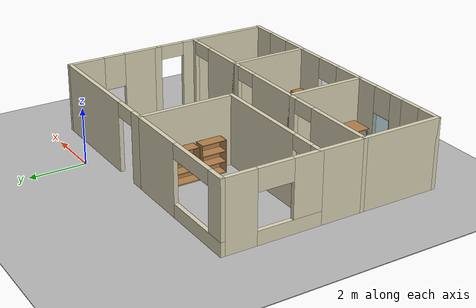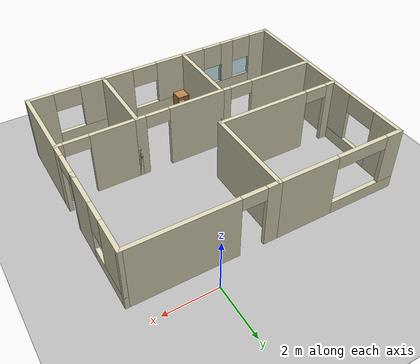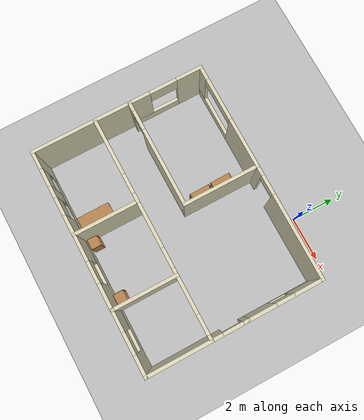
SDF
<sdf version="1.6">
 <world name="default">
  <light name="sun" type="directional">
   <pose>0 0 10 0 -0 0</pose>
   <diffuse>0.8 0.8 0.8 1</diffuse>
   <specular>0.2 0.2 0.2 1</specular>
   <attenuation>
    <range>1000</range>
    <constant>0.9</constant>
    <linear>0.01</linear>
    <quadratic>0.001</quadratic>
   </attenuation>
   <direction>0.5 0.1 -0.9</direction>
  </light>
  <scene><ambient>0.4 0.4 0.4 1</ambient><background>0.7 0.7 0.7 1</background><shadows>1</shadows></scene>
  <physics name="default_physics" default="0" type="ode">
   <max_step_size>0.01</max_step_size>
   <real_time_factor>1</real_time_factor>
   <real_time_update_rate>100</real_time_update_rate>
  </physics>
  <model name="ground_plane_0">
   <static>1</static>
   <link name="link">
    <collision name="collision">
     <geometry><plane><normal>0 0 1</normal><size>100 100</size></plane></geometry>
     <surface><friction><ode><mu>100</mu><mu2>50</mu2></ode></friction></surface>
    </collision>
    <visual name="visual">
     <cast_shadows>0</cast_shadows>
     <geometry><plane><normal>0 0 1</normal><size>100 100</size></plane></geometry>
     <material>
      <script><uri>file://media/materials/scripts/gazebo.material</uri><name>Gazebo/Grey</name></script>
     </material>
    </visual>
    <velocity_decay><linear>0</linear><angular>0</angular></velocity_decay>
   </link>
   <pose>0.497681 0 0 0 -0 0</pose>
  </model>
  <gravity>0 0 -9.8</gravity>
  <magnetic_field>6e-06 2.3e-05 -4.2e-05</magnetic_field>
  <atmosphere type="adiabatic"/>
  <spherical_coordinates>
   <surface_model>EARTH_WGS84</surface_model>
   <latitude_deg>0</latitude_deg>
   <longitude_deg>0</longitude_deg>
   <elevation>0</elevation>
   <heading_deg>0</heading_deg>
  </spherical_coordinates>
  <model name="simple_office1">
   <pose>-2.32762 -4.70819 0 0 -0 0</pose>
   <link name="Wall_69">
    <pose>-3.1 -3.9 0 0 -0 0</pose>
    <visual name="Wall_69_Visual_0">
     <pose>-1.5566 0 1.25 0 -0 0</pose>
     <geometry><box><size>0.886808 0.15 2.5</size></box></geometry>
     <material>
      <script><uri>file://media/materials/scripts/gazebo.material</uri><name>Gazebo/Grey</name></script>
      <ambient>0.847059 0.823529 0.705882 1</ambient>
     </material>
     <meta><layer>0</layer></meta>
    </visual>
    <collision name="Wall_69_Collision_0">
     <geometry><box><size>0.886808 0.15 2.5</size></box></geometry>
     <pose>-1.5566 0 1.25 0 -0 0</pose>
    </collision>
    <visual name="Wall_69_Visual_1">
     <pose>0.443404 0 0.375 0 -0 0</pose>
     <geometry><box><size>3.11319 0.15 0.75</size></box></geometry>
     <material>
      <script><uri>file://media/materials/scripts/gazebo.material</uri><name>Gazebo/Grey</name></script>
      <ambient>0.847059 0.823529 0.705882 1</ambient>
     </material>
     <meta><layer>0</layer></meta>
    </visual>
    <collision name="Wall_69_Collision_1">
     <geometry><box><size>3.11319 0.15 0.75</size></box></geometry>
     <pose>0.443404 0 0.375 0 -0 0</pose>
    </collision>
    <visual name="Wall_69_Visual_2">
     <pose>-0.036505 0 1.625 0 -0 0</pose>
     <geometry><box><size>0.553374 0.15 1.75</size></box></geometry>
     <material>
      <script><uri>file://media/materials/scripts/gazebo.material</uri><name>Gazebo/Grey</name></script>
      <ambient>0.847059 0.823529 0.705882 1</ambient>
     </material>
     <meta><layer>0</layer></meta>
    </visual>
    <collision name="Wall_69_Collision_2">
     <geometry><box><size>0.553374 0.15 1.75</size></box></geometry>
     <pose>-0.036505 0 1.625 0 -0 0</pose>
    </collision>
    <visual name="Wall_69_Visual_3">
     <pose>1.52009 0 1.625 0 -0 0</pose>
     <geometry><box><size>0.959818 0.15 1.75</size></box></geometry>
     <material>
      <script><uri>file://media/materials/scripts/gazebo.material</uri><name>Gazebo/Grey</name></script>
      <ambient>0.847059 0.823529 0.705882 1</ambient>
     </material>
     <meta><layer>0</layer></meta>
    </visual>
    <collision name="Wall_69_Collision_3">
     <geometry><box><size>0.959818 0.15 1.75</size></box></geometry>
     <pose>1.52009 0 1.625 0 -0 0</pose>
    </collision>
    <visual name="Wall_69_Visual_4">
     <pose>-0.713192 0 2.025 0 -0 0</pose>
     <geometry><box><size>0.8 0.15 0.95</size></box></geometry>
     <material>
      <script><uri>file://media/materials/scripts/gazebo.material</uri><name>Gazebo/Grey</name></script>
      <ambient>0.847059 0.823529 0.705882 1</ambient>
     </material>
     <meta><layer>0</layer></meta>
    </visual>
    <collision name="Wall_69_Collision_4">
     <geometry><box><size>0.8 0.15 0.95</size></box></geometry>
     <pose>-0.713192 0 2.025 0 -0 0</pose>
    </collision>
    <visual name="Wall_69_Visual_5">
     <pose>0.640182 0 2.025 0 -0 0</pose>
     <geometry><box><size>0.8 0.15 0.95</size></box></geometry>
     <material>
      <script><uri>file://media/materials/scripts/gazebo.material</uri><name>Gazebo/Grey</name></script>
      <ambient>0.847059 0.823529 0.705882 1</ambient>
     </material>
     <meta><layer>0</layer></meta>
    </visual>
    <collision name="Wall_69_Collision_5">
     <geometry><box><size>0.8 0.15 0.95</size></box></geometry>
     <pose>0.640182 0 2.025 0 -0 0</pose>
    </collision>
   </link>
   <link name="Wall_70">
    <collision name="Wall_70_Collision">
     <geometry><box><size>3 0.15 2.5</size></box></geometry>
     <pose>0 0 1.25 0 -0 0</pose>
    </collision>
    <visual name="Wall_70_Visual">
     <pose>0 0 1.25 0 -0 0</pose>
     <geometry><box><size>3 0.15 2.5</size></box></geometry>
     <material>
      <script><uri>file://media/materials/scripts/gazebo.material</uri><name>Gazebo/Grey</name></script>
      <ambient>0.847059 0.823529 0.705882 1</ambient>
     </material>
     <meta><layer>0</layer></meta>
    </visual>
    <pose>-1.175 -2.475 0 0 -0 1.5708</pose>
   </link>
   <link name="Wall_71">
    <pose>-3.1 -1.05 0 0 -0 3.14159</pose>
    <visual name="Wall_71_Visual_0">
     <pose>-1.77527 0 1.25 0 -0 0</pose>
     <geometry><box><size>0.449459 0.15 2.5</size></box></geometry>
     <material>
      <script><uri>file://media/materials/scripts/gazebo.material</uri><name>Gazebo/Grey</name></script>
      <ambient>0.847059 0.823529 0.705882 1</ambient>
     </material>
     <meta><layer>0</layer></meta>
    </visual>
    <collision name="Wall_71_Collision_0">
     <geometry><box><size>0.449459 0.15 2.5</size></box></geometry>
     <pose>-1.77527 0 1.25 0 -0 0</pose>
    </collision>
    <visual name="Wall_71_Visual_1">
     <pose>0.67473 0 1.25 0 -0 0</pose>
     <geometry><box><size>2.65054 0.15 2.5</size></box></geometry>
     <material>
      <script><uri>file://media/materials/scripts/gazebo.material</uri><name>Gazebo/Grey</name></script>
      <ambient>0.847059 0.823529 0.705882 1</ambient>
     </material>
     <meta><layer>0</layer></meta>
    </visual>
    <collision name="Wall_71_Collision_1">
     <geometry><box><size>2.65054 0.15 2.5</size></box></geometry>
     <pose>0.67473 0 1.25 0 -0 0</pose>
    </collision>
    <visual name="Wall_71_Visual_2">
     <pose>-1.10054 0 2.25 0 -0 0</pose>
     <geometry><box><size>0.9 0.15 0.5</size></box></geometry>
     <material>
      <script><uri>file://media/materials/scripts/gazebo.material</uri><name>Gazebo/Grey</name></script>
      <ambient>0.847059 0.823529 0.705882 1</ambient>
     </material>
     <meta><layer>0</layer></meta>
    </visual>
    <collision name="Wall_71_Collision_2">
     <geometry><box><size>0.9 0.15 0.5</size></box></geometry>
     <pose>-1.10054 0 2.25 0 -0 0</pose>
    </collision>
   </link>
   <link name="Wall_72">
    <collision name="Wall_72_Collision">
     <geometry><box><size>3 0.15 2.5</size></box></geometry>
     <pose>0 0 1.25 0 -0 0</pose>
    </collision>
    <visual name="Wall_72_Visual">
     <pose>0 0 1.25 0 -0 0</pose>
     <geometry><box><size>3 0.15 2.5</size></box></geometry>
     <material>
      <script><uri>file://media/materials/scripts/gazebo.material</uri><name>Gazebo/Grey</name></script>
      <ambient>0.847059 0.823529 0.705882 1</ambient>
     </material>
     <meta><layer>0</layer></meta>
    </visual>
    <pose>-5.025 -2.475 0 0 0 -1.5708</pose>
   </link>
   <link name="Wall_74">
    <pose>0.5 -1.05 0 0 -0 0</pose>
    <visual name="Wall_74_Visual_0">
     <pose>-0.651571 0 1.25 0 -0 0</pose>
     <geometry><box><size>2.19686 0.15 2.5</size></box></geometry>
     <material>
      <script><uri>file://media/materials/scripts/gazebo.material</uri><name>Gazebo/Grey</name></script>
      <ambient>0.847059 0.823529 0.705882 1</ambient>
     </material>
     <meta><layer>0</layer></meta>
    </visual>
    <collision name="Wall_74_Collision_0">
     <geometry><box><size>2.19686 0.15 2.5</size></box></geometry>
     <pose>-0.651571 0 1.25 0 -0 0</pose>
    </collision>
    <visual name="Wall_74_Visual_1">
     <pose>1.54843 0 1.25 0 -0 0</pose>
     <geometry><box><size>0.403141 0.15 2.5</size></box></geometry>
     <material>
      <script><uri>file://media/materials/scripts/gazebo.material</uri><name>Gazebo/Grey</name></script>
      <ambient>0.847059 0.823529 0.705882 1</ambient>
     </material>
     <meta><layer>0</layer></meta>
    </visual>
    <collision name="Wall_74_Collision_1">
     <geometry><box><size>0.403141 0.15 2.5</size></box></geometry>
     <pose>1.54843 0 1.25 0 -0 0</pose>
    </collision>
    <visual name="Wall_74_Visual_2">
     <pose>0.896859 0 2.25 0 -0 0</pose>
     <geometry><box><size>0.9 0.15 0.5</size></box></geometry>
     <material>
      <script><uri>file://media/materials/scripts/gazebo.material</uri><name>Gazebo/Grey</name></script>
      <ambient>0.847059 0.823529 0.705882 1</ambient>
     </material>
     <meta><layer>0</layer></meta>
    </visual>
    <collision name="Wall_74_Collision_2">
     <geometry><box><size>0.9 0.15 0.5</size></box></geometry>
     <pose>0.896859 0 2.25 0 -0 0</pose>
    </collision>
   </link>
   <link name="Wall_75">
    <collision name="Wall_75_Collision">
     <geometry><box><size>3 0.15 2.5</size></box></geometry>
     <pose>0 0 1.25 0 -0 0</pose>
    </collision>
    <visual name="Wall_75_Visual">
     <pose>0 0 1.25 0 -0 0</pose>
     <geometry><box><size>3 0.15 2.5</size></box></geometry>
     <material>
      <script><uri>file://media/materials/scripts/gazebo.material</uri><name>Gazebo/Grey</name></script>
      <ambient>0.847059 0.823529 0.705882 1</ambient>
     </material>
     <meta><layer>0</layer></meta>
    </visual>
    <pose>2.175 -2.475 0 0 0 -1.5708</pose>
   </link>
   <link name="Wall_76">
    <pose>0.5 -3.9 0 0 -0 3.14159</pose>
    <visual name="Wall_76_Visual_0">
     <pose>-1.1338 0 1.25 0 -0 0</pose>
     <geometry><box><size>1.2324 0.15 2.5</size></box></geometry>
     <material>
      <script><uri>file://media/materials/scripts/gazebo.material</uri><name>Gazebo/Grey</name></script>
      <ambient>0.847059 0.823529 0.705882 1</ambient>
     </material>
     <meta><layer>0</layer></meta>
    </visual>
    <collision name="Wall_76_Collision_0">
     <geometry><box><size>1.2324 0.15 2.5</size></box></geometry>
     <pose>-1.1338 0 1.25 0 -0 0</pose>
    </collision>
    <visual name="Wall_76_Visual_1">
     <pose>0.616199 0 0.375 0 -0 0</pose>
     <geometry><box><size>2.2676 0.15 0.75</size></box></geometry>
     <material>
      <script><uri>file://media/materials/scripts/gazebo.material</uri><name>Gazebo/Grey</name></script>
      <ambient>0.847059 0.823529 0.705882 1</ambient>
     </material>
     <meta><layer>0</layer></meta>
    </visual>
    <collision name="Wall_76_Collision_1">
     <geometry><box><size>2.2676 0.15 0.75</size></box></geometry>
     <pose>0.616199 0 0.375 0 -0 0</pose>
    </collision>
    <visual name="Wall_76_Visual_2">
     <pose>1.1162 0 1.625 0 -0 0</pose>
     <geometry><box><size>1.2676 0.15 1.75</size></box></geometry>
     <material>
      <script><uri>file://media/materials/scripts/gazebo.material</uri><name>Gazebo/Grey</name></script>
      <ambient>0.847059 0.823529 0.705882 1</ambient>
     </material>
     <meta><layer>0</layer></meta>
    </visual>
    <collision name="Wall_76_Collision_2">
     <geometry><box><size>1.2676 0.15 1.75</size></box></geometry>
     <pose>1.1162 0 1.625 0 -0 0</pose>
    </collision>
    <visual name="Wall_76_Visual_3">
     <pose>-0.017603 0 2.125 0 -0 0</pose>
     <geometry><box><size>1 0.15 0.75</size></box></geometry>
     <material>
      <script><uri>file://media/materials/scripts/gazebo.material</uri><name>Gazebo/Grey</name></script>
      <ambient>0.847059 0.823529 0.705882 1</ambient>
     </material>
     <meta><layer>0</layer></meta>
    </visual>
    <collision name="Wall_76_Collision_3">
     <geometry><box><size>1 0.15 0.75</size></box></geometry>
     <pose>-0.017603 0 2.125 0 -0 0</pose>
    </collision>
   </link>
   <link name="Wall_78">
    <pose>3.6 -1.05 0 0 -0 0</pose>
    <visual name="Wall_78_Visual_0">
     <pose>-0.608294 0 1.25 0 -0 0</pose>
     <geometry><box><size>1.78341 0.15 2.5</size></box></geometry>
     <material>
      <script><uri>file://media/materials/scripts/gazebo.material</uri><name>Gazebo/Grey</name></script>
      <ambient>0.847059 0.823529 0.705882 1</ambient>
     </material>
     <meta><layer>0</layer></meta>
    </visual>
    <collision name="Wall_78_Collision_0">
     <geometry><box><size>1.78341 0.15 2.5</size></box></geometry>
     <pose>-0.608294 0 1.25 0 -0 0</pose>
    </collision>
    <visual name="Wall_78_Visual_1">
     <pose>1.34171 0 1.25 0 -0 0</pose>
     <geometry><box><size>0.316587 0.15 2.5</size></box></geometry>
     <material>
      <script><uri>file://media/materials/scripts/gazebo.material</uri><name>Gazebo/Grey</name></script>
      <ambient>0.847059 0.823529 0.705882 1</ambient>
     </material>
     <meta><layer>0</layer></meta>
    </visual>
    <collision name="Wall_78_Collision_1">
     <geometry><box><size>0.316587 0.15 2.5</size></box></geometry>
     <pose>1.34171 0 1.25 0 -0 0</pose>
    </collision>
    <visual name="Wall_78_Visual_2">
     <pose>0.733413 0 2.25 0 -0 0</pose>
     <geometry><box><size>0.9 0.15 0.5</size></box></geometry>
     <material>
      <script><uri>file://media/materials/scripts/gazebo.material</uri><name>Gazebo/Grey</name></script>
      <ambient>0.847059 0.823529 0.705882 1</ambient>
     </material>
     <meta><layer>0</layer></meta>
    </visual>
    <collision name="Wall_78_Collision_2">
     <geometry><box><size>0.9 0.15 0.5</size></box></geometry>
     <pose>0.733413 0 2.25 0 -0 0</pose>
    </collision>
   </link>
   <link name="Wall_79">
    <collision name="Wall_79_Collision">
     <geometry><box><size>3 0.15 2.5</size></box></geometry>
     <pose>0 0 1.25 0 -0 0</pose>
    </collision>
    <visual name="Wall_79_Visual">
     <pose>0 0 1.25 0 -0 0</pose>
     <geometry><box><size>3 0.15 2.5</size></box></geometry>
     <material>
      <script><uri>file://media/materials/scripts/gazebo.material</uri><name>Gazebo/Grey</name></script>
      <ambient>0.847059 0.823529 0.705882 1</ambient>
     </material>
     <meta><layer>0</layer></meta>
    </visual>
    <pose>5.025 -2.475 0 0 0 -1.5708</pose>
   </link>
   <link name="Wall_80">
    <pose>3.6 -3.9 0 0 -0 3.14159</pose>
    <visual name="Wall_80_Visual_0">
     <pose>-1.0039 0 1.25 0 -0 0</pose>
     <geometry><box><size>0.992195 0.15 2.5</size></box></geometry>
     <material>
      <script><uri>file://media/materials/scripts/gazebo.material</uri><name>Gazebo/Grey</name></script>
      <ambient>0.847059 0.823529 0.705882 1</ambient>
     </material>
     <meta><layer>0</layer></meta>
    </visual>
    <collision name="Wall_80_Collision_0">
     <geometry><box><size>0.992195 0.15 2.5</size></box></geometry>
     <pose>-1.0039 0 1.25 0 -0 0</pose>
    </collision>
    <visual name="Wall_80_Visual_1">
     <pose>0.496097 0 0.375 0 -0 0</pose>
     <geometry><box><size>2.0078 0.15 0.75</size></box></geometry>
     <material>
      <script><uri>file://media/materials/scripts/gazebo.material</uri><name>Gazebo/Grey</name></script>
      <ambient>0.847059 0.823529 0.705882 1</ambient>
     </material>
     <meta><layer>0</layer></meta>
    </visual>
    <collision name="Wall_80_Collision_1">
     <geometry><box><size>2.0078 0.15 0.75</size></box></geometry>
     <pose>0.496097 0 0.375 0 -0 0</pose>
    </collision>
    <visual name="Wall_80_Visual_2">
     <pose>0.996097 0 1.625 0 -0 0</pose>
     <geometry><box><size>1.00781 0.15 1.75</size></box></geometry>
     <material>
      <script><uri>file://media/materials/scripts/gazebo.material</uri><name>Gazebo/Grey</name></script>
      <ambient>0.847059 0.823529 0.705882 1</ambient>
     </material>
     <meta><layer>0</layer></meta>
    </visual>
    <collision name="Wall_80_Collision_2">
     <geometry><box><size>1.00781 0.15 1.75</size></box></geometry>
     <pose>0.996097 0 1.625 0 -0 0</pose>
    </collision>
    <visual name="Wall_80_Visual_3">
     <pose>-0.007805 0 2.125 0 -0 0</pose>
     <geometry><box><size>1 0.15 0.75</size></box></geometry>
     <material>
      <script><uri>file://media/materials/scripts/gazebo.material</uri><name>Gazebo/Grey</name></script>
      <ambient>0.847059 0.823529 0.705882 1</ambient>
     </material>
     <meta><layer>0</layer></meta>
    </visual>
    <collision name="Wall_80_Collision_3">
     <geometry><box><size>1 0.15 0.75</size></box></geometry>
     <pose>-0.007805 0 2.125 0 -0 0</pose>
    </collision>
   </link>
   <link name="Wall_82">
    <collision name="Wall_82_Collision">
     <geometry><box><size>1.75 0.15 2.5</size></box></geometry>
     <pose>0 0 1.25 0 -0 0</pose>
    </collision>
    <visual name="Wall_82_Visual">
     <pose>0 0 1.25 0 -0 0</pose>
     <geometry><box><size>1.75 0.15 2.5</size></box></geometry>
     <material>
      <script><uri>file://media/materials/scripts/gazebo.material</uri><name>Gazebo/Grey</name></script>
      <ambient>0.847059 0.823529 0.705882 1</ambient>
     </material>
     <meta><layer>0</layer></meta>
    </visual>
    <pose>-5.025 -0.25 0 0 -0 1.5708</pose>
   </link>
   <link name="Wall_84">
    <pose>5.025 -0.25 0 0 -0 1.5708</pose>
    <visual name="Wall_84_Visual_0">
     <pose>-0.585295 0 1.25 0 -0 0</pose>
     <geometry><box><size>0.57941 0.15 2.5</size></box></geometry>
     <material>
      <script><uri>file://media/materials/scripts/gazebo.material</uri><name>Gazebo/Grey</name></script>
      <ambient>0.847059 0.823529 0.705882 1</ambient>
     </material>
     <meta><layer>0</layer></meta>
    </visual>
    <collision name="Wall_84_Collision_0">
     <geometry><box><size>0.57941 0.15 2.5</size></box></geometry>
     <pose>-0.585295 0 1.25 0 -0 0</pose>
    </collision>
    <visual name="Wall_84_Visual_1">
     <pose>0.739705 0 1.25 0 -0 0</pose>
     <geometry><box><size>0.27059 0.15 2.5</size></box></geometry>
     <material>
      <script><uri>file://media/materials/scripts/gazebo.material</uri><name>Gazebo/Grey</name></script>
      <ambient>0.847059 0.823529 0.705882 1</ambient>
     </material>
     <meta><layer>0</layer></meta>
    </visual>
    <collision name="Wall_84_Collision_1">
     <geometry><box><size>0.27059 0.15 2.5</size></box></geometry>
     <pose>0.739705 0 1.25 0 -0 0</pose>
    </collision>
    <visual name="Wall_84_Visual_2">
     <pose>0.15441 0 2.25 0 -0 0</pose>
     <geometry><box><size>0.9 0.15 0.5</size></box></geometry>
     <material>
      <script><uri>file://media/materials/scripts/gazebo.material</uri><name>Gazebo/Grey</name></script>
      <ambient>0.847059 0.823529 0.705882 1</ambient>
     </material>
     <meta><layer>0</layer></meta>
    </visual>
    <collision name="Wall_84_Collision_2">
     <geometry><box><size>0.9 0.15 0.5</size></box></geometry>
     <pose>0.15441 0 2.25 0 -0 0</pose>
    </collision>
   </link>
   <link name="Wall_86">
    <pose>-2.6 0.55 0 0 -0 0</pose>
    <visual name="Wall_86_Visual_0">
     <pose>-2.26733 0 1.25 0 -0 0</pose>
     <geometry><box><size>0.465335 0.15 2.5</size></box></geometry>
     <material>
      <script><uri>file://media/materials/scripts/gazebo.material</uri><name>Gazebo/Grey</name></script>
      <ambient>0.847059 0.823529 0.705882 1</ambient>
     </material>
     <meta><layer>0</layer></meta>
    </visual>
    <collision name="Wall_86_Collision_0">
     <geometry><box><size>0.465335 0.15 2.5</size></box></geometry>
     <pose>-2.26733 0 1.25 0 -0 0</pose>
    </collision>
    <visual name="Wall_86_Visual_1">
     <pose>0.682668 0 1.25 0 -0 0</pose>
     <geometry><box><size>3.63467 0.15 2.5</size></box></geometry>
     <material>
      <script><uri>file://media/materials/scripts/gazebo.material</uri><name>Gazebo/Grey</name></script>
      <ambient>0.847059 0.823529 0.705882 1</ambient>
     </material>
     <meta><layer>0</layer></meta>
    </visual>
    <collision name="Wall_86_Collision_1">
     <geometry><box><size>3.63467 0.15 2.5</size></box></geometry>
     <pose>0.682668 0 1.25 0 -0 0</pose>
    </collision>
    <visual name="Wall_86_Visual_2">
     <pose>-1.58466 0 2.25 0 -0 0</pose>
     <geometry><box><size>0.9 0.15 0.5</size></box></geometry>
     <material>
      <script><uri>file://media/materials/scripts/gazebo.material</uri><name>Gazebo/Grey</name></script>
      <ambient>0.847059 0.823529 0.705882 1</ambient>
     </material>
     <meta><layer>0</layer></meta>
    </visual>
    <collision name="Wall_86_Collision_2">
     <geometry><box><size>0.9 0.15 0.5</size></box></geometry>
     <pose>-1.58466 0 2.25 0 -0 0</pose>
    </collision>
   </link>
   <link name="Wall_87">
    <collision name="Wall_87_Collision">
     <geometry><box><size>3.5 0.15 2.5</size></box></geometry>
     <pose>0 0 1.25 0 -0 0</pose>
    </collision>
    <visual name="Wall_87_Visual">
     <pose>0 0 1.25 0 -0 0</pose>
     <geometry><box><size>3.5 0.15 2.5</size></box></geometry>
     <material>
      <script><uri>file://media/materials/scripts/gazebo.material</uri><name>Gazebo/Grey</name></script>
      <ambient>0.847059 0.823529 0.705882 1</ambient>
     </material>
     <meta><layer>0</layer></meta>
    </visual>
    <pose>-0.175 2.225 0 0 -0 1.5708</pose>
   </link>
   <link name="Wall_88">
    <pose>-2.6 3.9 0 0 -0 3.14159</pose>
    <visual name="Wall_88_Visual_0">
     <pose>-1.33513 0 1.25 0 -0 0</pose>
     <geometry><box><size>2.32974 0.15 2.5</size></box></geometry>
     <material>
      <script><uri>file://media/materials/scripts/gazebo.material</uri><name>Gazebo/Grey</name></script>
      <ambient>0.847059 0.823529 0.705882 1</ambient>
     </material>
     <meta><layer>0</layer></meta>
    </visual>
    <collision name="Wall_88_Collision_0">
     <geometry><box><size>2.32974 0.15 2.5</size></box></geometry>
     <pose>-1.33513 0 1.25 0 -0 0</pose>
    </collision>
    <visual name="Wall_88_Visual_1">
     <pose>1.16487 0 0.25 0 -0 0</pose>
     <geometry><box><size>2.67026 0.15 0.5</size></box></geometry>
     <material>
      <script><uri>file://media/materials/scripts/gazebo.material</uri><name>Gazebo/Grey</name></script>
      <ambient>0.847059 0.823529 0.705882 1</ambient>
     </material>
     <meta><layer>0</layer></meta>
    </visual>
    <collision name="Wall_88_Collision_1">
     <geometry><box><size>2.67026 0.15 0.5</size></box></geometry>
     <pose>1.16487 0 0.25 0 -0 0</pose>
    </collision>
    <visual name="Wall_88_Visual_2">
     <pose>2.16487 0 1.5 0 -0 0</pose>
     <geometry><box><size>0.670264 0.15 2</size></box></geometry>
     <material>
      <script><uri>file://media/materials/scripts/gazebo.material</uri><name>Gazebo/Grey</name></script>
      <ambient>0.847059 0.823529 0.705882 1</ambient>
     </material>
     <meta><layer>0</layer></meta>
    </visual>
    <collision name="Wall_88_Collision_2">
     <geometry><box><size>0.670264 0.15 2</size></box></geometry>
     <pose>2.16487 0 1.5 0 -0 0</pose>
    </collision>
    <visual name="Wall_88_Visual_3">
     <pose>0.829736 0 2.25 0 -0 0</pose>
     <geometry><box><size>2 0.15 0.5</size></box></geometry>
     <material>
      <script><uri>file://media/materials/scripts/gazebo.material</uri><name>Gazebo/Grey</name></script>
      <ambient>0.847059 0.823529 0.705882 1</ambient>
     </material>
     <meta><layer>0</layer></meta>
    </visual>
    <collision name="Wall_88_Collision_3">
     <geometry><box><size>2 0.15 0.5</size></box></geometry>
     <pose>0.829736 0 2.25 0 -0 0</pose>
    </collision>
   </link>
   <link name="Wall_89">
    <pose>-5.025 2.225 0 0 0 -1.5708</pose>
    <visual name="Wall_89_Visual_0">
     <pose>-1.13371 0 1.25 0 -0 0</pose>
     <geometry><box><size>1.23257 0.15 2.5</size></box></geometry>
     <material>
      <script><uri>file://media/materials/scripts/gazebo.material</uri><name>Gazebo/Grey</name></script>
      <ambient>0.847059 0.823529 0.705882 1</ambient>
     </material>
     <meta><layer>0</layer></meta>
    </visual>
    <collision name="Wall_89_Collision_0">
     <geometry><box><size>1.23257 0.15 2.5</size></box></geometry>
     <pose>-1.13371 0 1.25 0 -0 0</pose>
    </collision>
    <visual name="Wall_89_Visual_1">
     <pose>0.616286 0 0.25 0 -0 0</pose>
     <geometry><box><size>2.26743 0.15 0.5</size></box></geometry>
     <material>
      <script><uri>file://media/materials/scripts/gazebo.material</uri><name>Gazebo/Grey</name></script>
      <ambient>0.847059 0.823529 0.705882 1</ambient>
     </material>
     <meta><layer>0</layer></meta>
    </visual>
    <collision name="Wall_89_Collision_1">
     <geometry><box><size>2.26743 0.15 0.5</size></box></geometry>
     <pose>0.616286 0 0.25 0 -0 0</pose>
    </collision>
    <visual name="Wall_89_Visual_2">
     <pose>1.24129 0 1.5 0 -0 0</pose>
     <geometry><box><size>1.01743 0.15 2</size></box></geometry>
     <material>
      <script><uri>file://media/materials/scripts/gazebo.material</uri><name>Gazebo/Grey</name></script>
      <ambient>0.847059 0.823529 0.705882 1</ambient>
     </material>
     <meta><layer>0</layer></meta>
    </visual>
    <collision name="Wall_89_Collision_2">
     <geometry><box><size>1.01743 0.15 2</size></box></geometry>
     <pose>1.24129 0 1.5 0 -0 0</pose>
    </collision>
    <visual name="Wall_89_Visual_3">
     <pose>0.107572 0 2.125 0 -0 0</pose>
     <geometry><box><size>1.25 0.15 0.75</size></box></geometry>
     <material>
      <script><uri>file://media/materials/scripts/gazebo.material</uri><name>Gazebo/Grey</name></script>
      <ambient>0.847059 0.823529 0.705882 1</ambient>
     </material>
     <meta><layer>0</layer></meta>
    </visual>
    <collision name="Wall_89_Collision_3">
     <geometry><box><size>1.25 0.15 0.75</size></box></geometry>
     <pose>0.107572 0 2.125 0 -0 0</pose>
    </collision>
   </link>
   <link name="Wall_91">
    <pose>5.025 2.225 0 0 -0 1.5708</pose>
    <visual name="Wall_91_Visual_0">
     <pose>-1.0724 0 1.25 0 -0 0</pose>
     <geometry><box><size>1.35521 0.15 2.5</size></box></geometry>
     <material>
      <script><uri>file://media/materials/scripts/gazebo.material</uri><name>Gazebo/Grey</name></script>
      <ambient>0.847059 0.823529 0.705882 1</ambient>
     </material>
     <meta><layer>0</layer></meta>
    </visual>
    <collision name="Wall_91_Collision_0">
     <geometry><box><size>1.35521 0.15 2.5</size></box></geometry>
     <pose>-1.0724 0 1.25 0 -0 0</pose>
    </collision>
    <visual name="Wall_91_Visual_1">
     <pose>0.677604 0 0.25 0 -0 0</pose>
     <geometry><box><size>2.14479 0.15 0.5</size></box></geometry>
     <material>
      <script><uri>file://media/materials/scripts/gazebo.material</uri><name>Gazebo/Grey</name></script>
      <ambient>0.847059 0.823529 0.705882 1</ambient>
     </material>
     <meta><layer>0</layer></meta>
    </visual>
    <collision name="Wall_91_Collision_1">
     <geometry><box><size>2.14479 0.15 0.5</size></box></geometry>
     <pose>0.677604 0 0.25 0 -0 0</pose>
    </collision>
    <visual name="Wall_91_Visual_2">
     <pose>1.0776 0 1.5 0 -0 0</pose>
     <geometry><box><size>1.34479 0.15 2</size></box></geometry>
     <material>
      <script><uri>file://media/materials/scripts/gazebo.material</uri><name>Gazebo/Grey</name></script>
      <ambient>0.847059 0.823529 0.705882 1</ambient>
     </material>
     <meta><layer>0</layer></meta>
    </visual>
    <collision name="Wall_91_Collision_2">
     <geometry><box><size>1.34479 0.15 2</size></box></geometry>
     <pose>1.0776 0 1.5 0 -0 0</pose>
    </collision>
    <visual name="Wall_91_Visual_3">
     <pose>0.005209 0 1.9 0 -0 0</pose>
     <geometry><box><size>0.8 0.15 1.2</size></box></geometry>
     <material>
      <script><uri>file://media/materials/scripts/gazebo.material</uri><name>Gazebo/Grey</name></script>
      <ambient>0.847059 0.823529 0.705882 1</ambient>
     </material>
     <meta><layer>0</layer></meta>
    </visual>
    <collision name="Wall_91_Collision_3">
     <geometry><box><size>0.8 0.15 1.2</size></box></geometry>
     <pose>0.005209 0 1.9 0 -0 0</pose>
    </collision>
   </link>
   <link name="Wall_92">
    <pose>2.425 3.9 0 0 -0 3.14159</pose>
    <visual name="Wall_92_Visual_0">
     <pose>-0.710441 0 1.25 0 -0 0</pose>
     <geometry><box><size>3.92912 0.15 2.5</size></box></geometry>
     <material>
      <script><uri>file://media/materials/scripts/gazebo.material</uri><name>Gazebo/Grey</name></script>
      <ambient>0.847059 0.823529 0.705882 1</ambient>
     </material>
     <meta><layer>0</layer></meta>
    </visual>
    <collision name="Wall_92_Collision_0">
     <geometry><box><size>3.92912 0.15 2.5</size></box></geometry>
     <pose>-0.710441 0 1.25 0 -0 0</pose>
    </collision>
    <visual name="Wall_92_Visual_1">
     <pose>2.41456 0 1.25 0 -0 0</pose>
     <geometry><box><size>0.520883 0.15 2.5</size></box></geometry>
     <material>
      <script><uri>file://media/materials/scripts/gazebo.material</uri><name>Gazebo/Grey</name></script>
      <ambient>0.847059 0.823529 0.705882 1</ambient>
     </material>
     <meta><layer>0</layer></meta>
    </visual>
    <collision name="Wall_92_Collision_1">
     <geometry><box><size>0.520883 0.15 2.5</size></box></geometry>
     <pose>2.41456 0 1.25 0 -0 0</pose>
    </collision>
    <visual name="Wall_92_Visual_2">
     <pose>1.70412 0 2.25 0 -0 0</pose>
     <geometry><box><size>0.9 0.15 0.5</size></box></geometry>
     <material>
      <script><uri>file://media/materials/scripts/gazebo.material</uri><name>Gazebo/Grey</name></script>
      <ambient>0.847059 0.823529 0.705882 1</ambient>
     </material>
     <meta><layer>0</layer></meta>
    </visual>
    <collision name="Wall_92_Collision_2">
     <geometry><box><size>0.9 0.15 0.5</size></box></geometry>
     <pose>1.70412 0 2.25 0 -0 0</pose>
    </collision>
   </link>
   <static>1</static>
  </model>
  <model name="bookshelf">
   <static>1</static>
   <link name="link">
    <inertial><mass>1</mass></inertial>
    <collision name="back">
     <pose>0 0.005 0.6 0 -0 0</pose>
     <geometry><box><size>0.9 0.01 1.2</size></box></geometry>
    </collision>
    <visual name="visual1">
     <pose>0 0.005 0.6 0 -0 0</pose>
     <geometry><box><size>0.9 0.01 1.2</size></box></geometry>
     <material>
      <script><uri>file://media/materials/scripts/gazebo.material</uri><name>Gazebo/Wood</name></script>
     </material>
    </visual>
    <collision name="left_side">
     <pose>0.45 -0.195 0.6 0 -0 0</pose>
     <geometry><box><size>0.02 0.4 1.2</size></box></geometry>
    </collision>
    <visual name="visual2">
     <pose>0.45 -0.195 0.6 0 -0 0</pose>
     <geometry><box><size>0.02 0.4 1.2</size></box></geometry>
     <material>
      <script><uri>file://media/materials/scripts/gazebo.material</uri><name>Gazebo/Wood</name></script>
     </material>
    </visual>
    <collision name="right_side">
     <pose>-0.45 -0.195 0.6 0 -0 0</pose>
     <geometry><box><size>0.02 0.4 1.2</size></box></geometry>
    </collision>
    <visual name="visual3">
     <pose>-0.45 -0.195 0.6 0 -0 0</pose>
     <geometry><box><size>0.02 0.4 1.2</size></box></geometry>
     <material>
      <script><uri>file://media/materials/scripts/gazebo.material</uri><name>Gazebo/Wood</name></script>
     </material>
    </visual>
    <collision name="bottom">
     <pose>0 -0.195 0.03 0 -0 0</pose>
     <geometry><box><size>0.88 0.4 0.06</size></box></geometry>
    </collision>
    <visual name="visual4">
     <pose>0 -0.195 0.03 0 -0 0</pose>
     <geometry><box><size>0.88 0.4 0.06</size></box></geometry>
     <material>
      <script><uri>file://media/materials/scripts/gazebo.material</uri><name>Gazebo/Wood</name></script>
     </material>
    </visual>
    <collision name="top">
     <pose>0 -0.195 1.19 0 -0 0</pose>
     <geometry><box><size>0.88 0.4 0.02</size></box></geometry>
    </collision>
    <visual name="visual5">
     <pose>0 -0.195 1.19 0 -0 0</pose>
     <geometry><box><size>0.88 0.4 0.02</size></box></geometry>
     <material>
      <script><uri>file://media/materials/scripts/gazebo.material</uri><name>Gazebo/Wood</name></script>
     </material>
    </visual>
    <collision name="low_shelf">
     <pose>0 -0.195 0.43 0 -0 0</pose>
     <geometry><box><size>0.88 0.4 0.02</size></box></geometry>
    </collision>
    <visual name="visual6">
     <pose>0 -0.195 0.43 0 -0 0</pose>
     <geometry><box><size>0.88 0.4 0.02</size></box></geometry>
     <material>
      <script><uri>file://media/materials/scripts/gazebo.material</uri><name>Gazebo/Wood</name></script>
     </material>
    </visual>
    <collision name="high_shelf">
     <pose>0 -0.195 0.8 0 -0 0</pose>
     <geometry><box><size>0.88 0.4 0.02</size></box></geometry>
    </collision>
    <visual name="visual7">
     <pose>0 -0.195 0.8 0 -0 0</pose>
     <geometry><box><size>0.88 0.4 0.02</size></box></geometry>
     <material>
      <script><uri>file://media/materials/scripts/gazebo.material</uri><name>Gazebo/Wood</name></script>
     </material>
    </visual>
   </link>
   <pose>-2.64639 -2.1797 0 0 0 -1.5623</pose>
  </model>
  <model name="bookshelf_clone">
   <static>1</static>
   <link name="link">
    <inertial><mass>1</mass></inertial>
    <collision name="back">
     <pose>0 0.005 0.6 0 -0 0</pose>
     <geometry><box><size>0.9 0.01 1.2</size></box></geometry>
    </collision>
    <visual name="visual1">
     <pose>0 0.005 0.6 0 -0 0</pose>
     <geometry><box><size>0.9 0.01 1.2</size></box></geometry>
     <material>
      <script><uri>file://media/materials/scripts/gazebo.material</uri><name>Gazebo/Wood</name></script>
     </material>
    </visual>
    <collision name="left_side">
     <pose>0.45 -0.195 0.6 0 -0 0</pose>
     <geometry><box><size>0.02 0.4 1.2</size></box></geometry>
    </collision>
    <visual name="visual2">
     <pose>0.45 -0.195 0.6 0 -0 0</pose>
     <geometry><box><size>0.02 0.4 1.2</size></box></geometry>
     <material>
      <script><uri>file://media/materials/scripts/gazebo.material</uri><name>Gazebo/Wood</name></script>
     </material>
    </visual>
    <collision name="right_side">
     <pose>-0.45 -0.195 0.6 0 -0 0</pose>
     <geometry><box><size>0.02 0.4 1.2</size></box></geometry>
    </collision>
    <visual name="visual3">
     <pose>-0.45 -0.195 0.6 0 -0 0</pose>
     <geometry><box><size>0.02 0.4 1.2</size></box></geometry>
     <material>
      <script><uri>file://media/materials/scripts/gazebo.material</uri><name>Gazebo/Wood</name></script>
     </material>
    </visual>
    <collision name="bottom">
     <pose>0 -0.195 0.03 0 -0 0</pose>
     <geometry><box><size>0.88 0.4 0.06</size></box></geometry>
    </collision>
    <visual name="visual4">
     <pose>0 -0.195 0.03 0 -0 0</pose>
     <geometry><box><size>0.88 0.4 0.06</size></box></geometry>
     <material>
      <script><uri>file://media/materials/scripts/gazebo.material</uri><name>Gazebo/Wood</name></script>
     </material>
    </visual>
    <collision name="top">
     <pose>0 -0.195 1.19 0 -0 0</pose>
     <geometry><box><size>0.88 0.4 0.02</size></box></geometry>
    </collision>
    <visual name="visual5">
     <pose>0 -0.195 1.19 0 -0 0</pose>
     <geometry><box><size>0.88 0.4 0.02</size></box></geometry>
     <material>
      <script><uri>file://media/materials/scripts/gazebo.material</uri><name>Gazebo/Wood</name></script>
     </material>
    </visual>
    <collision name="low_shelf">
     <pose>0 -0.195 0.43 0 -0 0</pose>
     <geometry><box><size>0.88 0.4 0.02</size></box></geometry>
    </collision>
    <visual name="visual6">
     <pose>0 -0.195 0.43 0 -0 0</pose>
     <geometry><box><size>0.88 0.4 0.02</size></box></geometry>
     <material>
      <script><uri>file://media/materials/scripts/gazebo.material</uri><name>Gazebo/Wood</name></script>
     </material>
    </visual>
    <collision name="high_shelf">
     <pose>0 -0.195 0.8 0 -0 0</pose>
     <geometry><box><size>0.88 0.4 0.02</size></box></geometry>
    </collision>
    <visual name="visual7">
     <pose>0 -0.195 0.8 0 -0 0</pose>
     <geometry><box><size>0.88 0.4 0.02</size></box></geometry>
     <material>
      <script><uri>file://media/materials/scripts/gazebo.material</uri><name>Gazebo/Wood</name></script>
     </material>
    </visual>
   </link>
   <pose>-2.61961 -3.19629 0 0 0 -1.5623</pose>
  </model>
  <model name="cabinet">
   <static>1</static>
   <link name="cabinet_bottom_plate">
    <inertial>
     <pose>0 0 -1 0 -0 0</pose>
     <inertia><ixx>2.05</ixx><ixy>0</ixy><ixz>0</ixz><iyy>2.05</iyy><iyz>0</iyz><izz>2.05</izz></inertia>
     <mass>25</mass>
    </inertial>
    <collision name="cabinet_bottom_plate_geom">
     <pose>0 0 0.01 0 -0 0</pose>
     <geometry><box><size>0.45 0.45 0.02</size></box></geometry>
    </collision>
    <visual name="cabinet_bottom_plate_geom_visual">
     <pose>0 0 0.01 0 -0 0</pose>
     <geometry><box><size>0.45 0.45 0.02</size></box></geometry>
     <material>
      <script><uri>file://media/materials/scripts/gazebo.material</uri><name>Gazebo/Wood</name></script>
     </material>
    </visual>
    <collision name="cabinet_bottom_plate_geom_cabinet_back_plate">
     <pose>0.235 0 0.51 0 -0 0</pose>
     <geometry><box><size>0.02 0.45 1.02</size></box></geometry>
    </collision>
    <visual name="cabinet_bottom_plate_geom_cabinet_back_plate_visual">
     <pose>0.235 0 0.51 0 -0 0</pose>
     <geometry><box><size>0.02 0.45 1.02</size></box></geometry>
     <material>
      <script><uri>file://media/materials/scripts/gazebo.material</uri><name>Gazebo/Wood</name></script>
     </material>
    </visual>
    <collision name="cabinet_bottom_plate_geom_cabinet_left_plate">
     <pose>0 0.235 0.51 0 -0 0</pose>
     <geometry><box><size>0.45 0.02 1.02</size></box></geometry>
    </collision>
    <visual name="cabinet_bottom_plate_geom_cabinet_left_plate_visual">
     <pose>0 0.235 0.51 0 -0 0</pose>
     <geometry><box><size>0.45 0.02 1.02</size></box></geometry>
     <material>
      <script><uri>file://media/materials/scripts/gazebo.material</uri><name>Gazebo/Wood</name></script>
     </material>
    </visual>
    <collision name="cabinet_bottom_plate_geom_cabinet_middle_plate">
     <pose>0 0 0.51 0 -0 0</pose>
     <geometry><box><size>0.45 0.45 0.02</size></box></geometry>
    </collision>
    <visual name="cabinet_bottom_plate_geom_cabinet_middle_plate_visual">
     <pose>0 0 0.51 0 -0 0</pose>
     <geometry><box><size>0.45 0.45 0.02</size></box></geometry>
     <material>
      <script><uri>file://media/materials/scripts/gazebo.material</uri><name>Gazebo/Wood</name></script>
     </material>
    </visual>
    <collision name="cabinet_bottom_plate_geom_cabinet_right_plate">
     <pose>0 -0.235 0.51 0 -0 0</pose>
     <geometry><box><size>0.45 0.02 1.02</size></box></geometry>
    </collision>
    <visual name="cabinet_bottom_plate_geom_cabinet_right_plate_visual">
     <pose>0 -0.235 0.51 0 -0 0</pose>
     <geometry><box><size>0.45 0.02 1.02</size></box></geometry>
     <material>
      <script><uri>file://media/materials/scripts/gazebo.material</uri><name>Gazebo/Wood</name></script>
     </material>
    </visual>
    <collision name="cabinet_bottom_plate_geom_cabinet_top_plate">
     <pose>0 0 1.01 0 -0 0</pose>
     <geometry><box><size>0.45 0.45 0.02</size></box></geometry>
    </collision>
    <visual name="cabinet_bottom_plate_geom_cabinet_top_plate_visual">
     <pose>0 0 1.01 0 -0 0</pose>
     <geometry><box><size>0.45 0.45 0.02</size></box></geometry>
     <material>
      <script><uri>file://media/materials/scripts/gazebo.material</uri><name>Gazebo/Wood</name></script>
     </material>
    </visual>
   </link>
   <pose>-0.549048 -8.27147 0 0 0 -1.56389</pose>
  </model>
  <model name="cabinet_clone">
   <static>1</static>
   <link name="cabinet_bottom_plate">
    <inertial>
     <pose>0 0 -1 0 -0 0</pose>
     <inertia><ixx>2.05</ixx><ixy>0</ixy><ixz>0</ixz><iyy>2.05</iyy><iyz>0</iyz><izz>2.05</izz></inertia>
     <mass>25</mass>
    </inertial>
    <collision name="cabinet_bottom_plate_geom">
     <pose>0 0 0.01 0 -0 0</pose>
     <geometry><box><size>0.45 0.45 0.02</size></box></geometry>
    </collision>
    <visual name="cabinet_bottom_plate_geom_visual">
     <pose>0 0 0.01 0 -0 0</pose>
     <geometry><box><size>0.45 0.45 0.02</size></box></geometry>
     <material>
      <script><uri>file://media/materials/scripts/gazebo.material</uri><name>Gazebo/Wood</name></script>
     </material>
    </visual>
    <collision name="cabinet_bottom_plate_geom_cabinet_back_plate">
     <pose>0.235 0 0.51 0 -0 0</pose>
     <geometry><box><size>0.02 0.45 1.02</size></box></geometry>
    </collision>
    <visual name="cabinet_bottom_plate_geom_cabinet_back_plate_visual">
     <pose>0.235 0 0.51 0 -0 0</pose>
     <geometry><box><size>0.02 0.45 1.02</size></box></geometry>
     <material>
      <script><uri>file://media/materials/scripts/gazebo.material</uri><name>Gazebo/Wood</name></script>
     </material>
    </visual>
    <collision name="cabinet_bottom_plate_geom_cabinet_left_plate">
     <pose>0 0.235 0.51 0 -0 0</pose>
     <geometry><box><size>0.45 0.02 1.02</size></box></geometry>
    </collision>
    <visual name="cabinet_bottom_plate_geom_cabinet_left_plate_visual">
     <pose>0 0.235 0.51 0 -0 0</pose>
     <geometry><box><size>0.45 0.02 1.02</size></box></geometry>
     <material>
      <script><uri>file://media/materials/scripts/gazebo.material</uri><name>Gazebo/Wood</name></script>
     </material>
    </visual>
    <collision name="cabinet_bottom_plate_geom_cabinet_middle_plate">
     <pose>0 0 0.51 0 -0 0</pose>
     <geometry><box><size>0.45 0.45 0.02</size></box></geometry>
    </collision>
    <visual name="cabinet_bottom_plate_geom_cabinet_middle_plate_visual">
     <pose>0 0 0.51 0 -0 0</pose>
     <geometry><box><size>0.45 0.45 0.02</size></box></geometry>
     <material>
      <script><uri>file://media/materials/scripts/gazebo.material</uri><name>Gazebo/Wood</name></script>
     </material>
    </visual>
    <collision name="cabinet_bottom_plate_geom_cabinet_right_plate">
     <pose>0 -0.235 0.51 0 -0 0</pose>
     <geometry><box><size>0.45 0.02 1.02</size></box></geometry>
    </collision>
    <visual name="cabinet_bottom_plate_geom_cabinet_right_plate_visual">
     <pose>0 -0.235 0.51 0 -0 0</pose>
     <geometry><box><size>0.45 0.02 1.02</size></box></geometry>
     <material>
      <script><uri>file://media/materials/scripts/gazebo.material</uri><name>Gazebo/Wood</name></script>
     </material>
    </visual>
    <collision name="cabinet_bottom_plate_geom_cabinet_top_plate">
     <pose>0 0 1.01 0 -0 0</pose>
     <geometry><box><size>0.45 0.45 0.02</size></box></geometry>
    </collision>
    <visual name="cabinet_bottom_plate_geom_cabinet_top_plate_visual">
     <pose>0 0 1.01 0 -0 0</pose>
     <geometry><box><size>0.45 0.45 0.02</size></box></geometry>
     <material>
      <script><uri>file://media/materials/scripts/gazebo.material</uri><name>Gazebo/Wood</name></script>
     </material>
    </visual>
   </link>
   <pose>-3.13192 -8.2031 0 0 0 -1.56389</pose>
  </model>
  <model name="table">
   <static>1</static>
   <link name="link">
    <collision name="surface">
     <pose>0 0 1 0 -0 0</pose>
     <geometry><box><size>1.5 0.8 0.03</size></box></geometry>
     <surface><friction><ode><mu>0.6</mu><mu2>0.6</mu2></ode></friction></surface>
    </collision>
    <visual name="visual1">
     <pose>0 0 1 0 -0 0</pose>
     <geometry><box><size>1.5 0.8 0.03</size></box></geometry>
     <material>
      <script><uri>file://media/materials/scripts/gazebo.material</uri><name>Gazebo/Wood</name></script>
     </material>
    </visual>
    <collision name="front_left_leg">
     <pose>0.68 0.38 0.5 0 -0 0</pose>
     <geometry><cylinder><radius>0.02</radius><length>1</length></cylinder></geometry>
    </collision>
    <visual name="front_left_leg">
     <pose>0.68 0.38 0.5 0 -0 0</pose>
     <geometry><cylinder><radius>0.02</radius><length>1</length></cylinder></geometry>
     <material>
      <script><uri>file://media/materials/scripts/gazebo.material</uri><name>Gazebo/Grey</name></script>
     </material>
    </visual>
    <collision name="front_right_leg">
     <pose>0.68 -0.38 0.5 0 -0 0</pose>
     <geometry><cylinder><radius>0.02</radius><length>1</length></cylinder></geometry>
    </collision>
    <visual name="front_right_leg">
     <pose>0.68 -0.38 0.5 0 -0 0</pose>
     <geometry><cylinder><radius>0.02</radius><length>1</length></cylinder></geometry>
     <material>
      <script><uri>file://media/materials/scripts/gazebo.material</uri><name>Gazebo/Grey</name></script>
     </material>
    </visual>
    <collision name="back_right_leg">
     <pose>-0.68 -0.38 0.5 0 -0 0</pose>
     <geometry><cylinder><radius>0.02</radius><length>1</length></cylinder></geometry>
    </collision>
    <visual name="back_right_leg">
     <pose>-0.68 -0.38 0.5 0 -0 0</pose>
     <geometry><cylinder><radius>0.02</radius><length>1</length></cylinder></geometry>
     <material>
      <script><uri>file://media/materials/scripts/gazebo.material</uri><name>Gazebo/Grey</name></script>
     </material>
    </visual>
    <collision name="back_left_leg">
     <pose>-0.68 0.38 0.5 0 -0 0</pose>
     <geometry><cylinder><radius>0.02</radius><length>1</length></cylinder></geometry>
    </collision>
    <visual name="back_left_leg">
     <pose>-0.68 0.38 0.5 0 -0 0</pose>
     <geometry><cylinder><radius>0.02</radius><length>1</length></cylinder></geometry>
     <material>
      <script><uri>file://media/materials/scripts/gazebo.material</uri><name>Gazebo/Grey</name></script>
     </material>
    </visual>
   </link>
   <pose>-4.00636 -7.64692 0 0 0 -1.57233</pose>
  </model>
  <model name="Floor">
   <link name="main">
    <pose>0 0 0.01 0 -0 0</pose>
    <collision name="main_Collision"><geometry><box><size>40 40 0.01</size></box></geometry></collision>
    <visual name="main_Visual">
     <geometry><box><size>40 40 0.01</size></box></geometry>
     <material>
      <script>
       <uri>model://Floor/materials/scripts</uri>
       <uri>model://Floor/materials/textures</uri>
       <name>floor</name>
      </script>
     </material>
    </visual>
   </link>
   <static>1</static>
   <pose>2.29305 -10.7079 0 0 -0 0</pose>
  </model>
  <model name="window">
   <link name="link_2">
    <visual name="visual">
     <pose>0 0 0.9 0 -0 0</pose>
     <geometry><box><size>0.8 0.15 0.8</size></box></geometry>
     <material>
      <lighting>1</lighting>
      <ambient>0.1 0.5 0.6 1</ambient>
      <diffuse>0.1 0.5 0.6 1</diffuse>
      <specular>0.01 0.01 0.01 1</specular>
      <emissive>0 0 0 1</emissive>
     </material>
     <transparency>0.7</transparency>
    </visual>
    <collision name="collision">
     <pose>0 0 0.9 0 -0 0</pose>
     <geometry><box><size>0.8 0.15 0.8</size></box></geometry>
    </collision>
   </link>
   <static>1</static>
   <pose>-6.14621 -8.61789 0.256821 0 -0 0</pose>
  </model>
  <model name="window_clone">
   <link name="link_2">
    <visual name="visual">
     <pose>0 0 0.9 0 -0 0</pose>
     <geometry><box><size>0.8 0.15 0.8</size></box></geometry>
     <material>
      <lighting>1</lighting>
      <ambient>0.1 0.5 0.6 1</ambient>
      <diffuse>0.1 0.5 0.6 1</diffuse>
      <specular>0.01 0.01 0.01 1</specular>
      <emissive>0 0 0 1</emissive>
     </material>
     <transparency>0.7</transparency>
    </visual>
    <collision name="collision">
     <pose>0 0 0.9 0 -0 0</pose>
     <geometry><box><size>0.8 0.15 0.8</size></box></geometry>
    </collision>
   </link>
   <static>1</static>
   <pose>-4.81219 -8.60097 0.256821 0 -0 0</pose>
  </model>
 </world>
</sdf>
